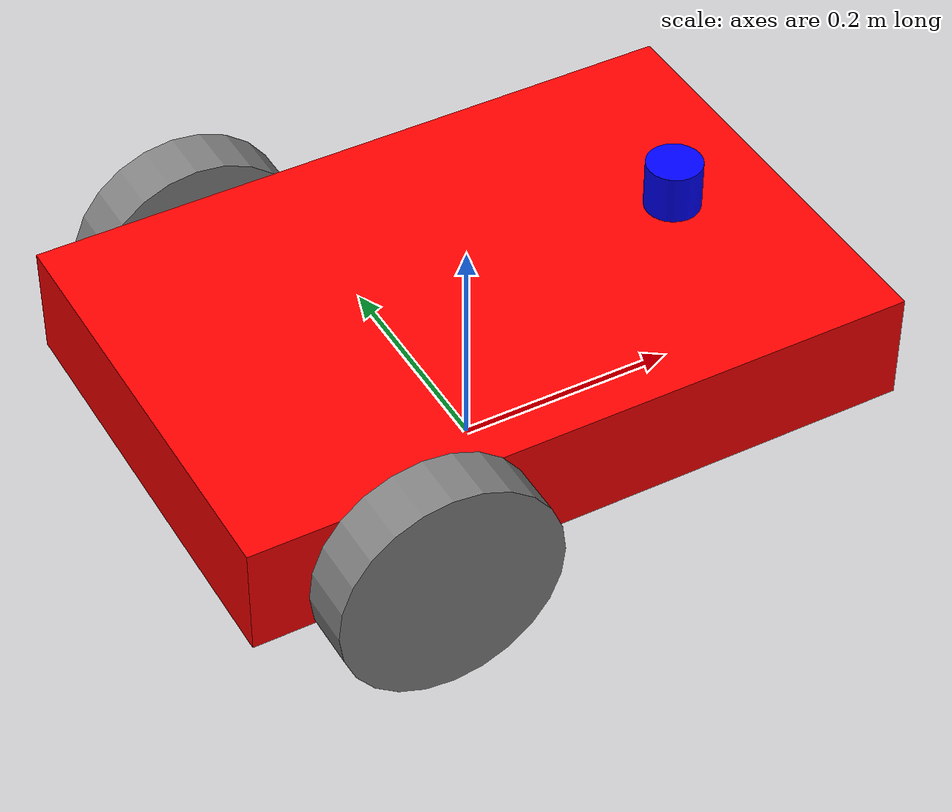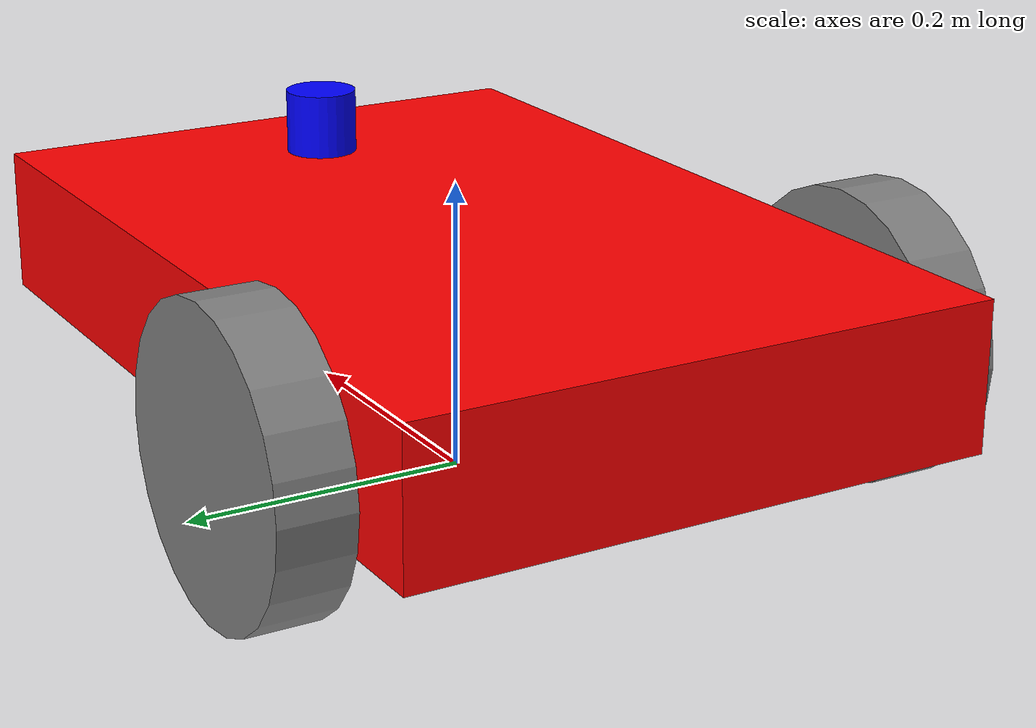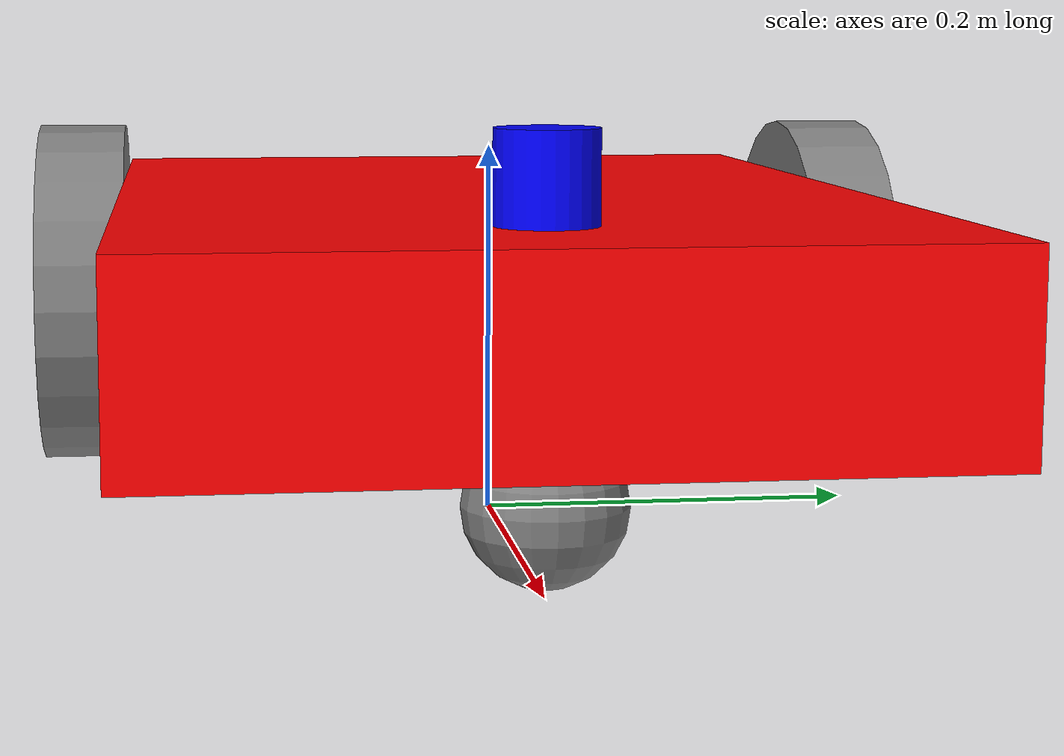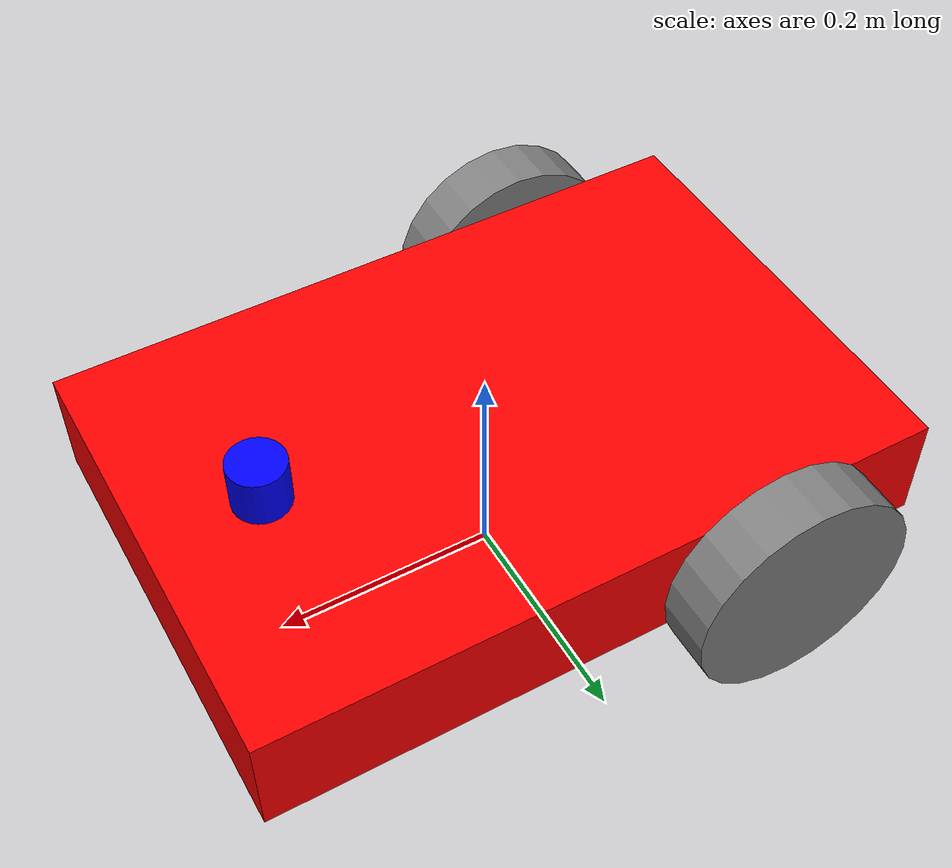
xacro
<?xml version="1.0"?>

<robot xmlns:xacro="http://www.ros.org/wiki/xacro" name="rz_robot">

    <xacro:include filename="$(find robot_model)/urdf/gazebo_config.xacro" />
    <xacro:include filename="$(find robot_model)/urdf/robot_plugins.gazebo" />

    <!-- Material : colors -->
    <material name="red">
        <color rgba="1.0 0.0 0.0 1.0"/>
    </material>

    <material name="gray">
        <color rgba="0.5 0.5 0.5 1.0"/>
    </material>

    <material name="blue">
        <color rgba="0.0 0.0 1.0 1.0"/>
    </material>

    <!-- base link  -->
    <link name="base_footprint" />

    <!-- Chassis link -->
    <link name="chassis_link">

        <inertial>
            <origin xyz="0.0 0.0 0.0" rpy="0.0 0.0 0.0"/>
            <mass value="5.0"/>
            <inertia ixx="0.1" ixy="0.0" ixz="0.0" iyy="0.1" iyz="0.0" izz="0.1"/>
        </inertial>

        <visual name="chassis_visual">
            <origin xyz="0.0 0.0 0.0" rpy="0.0 0.0 0.0"/>
            <geometry>
                <box size="0.6 0.4 0.1"/>
            </geometry>
            <material name="red"/>
        </visual>

        <collision>
            <origin xyz="0.0 0.0 0.0" rpy="0.0 0.0 0.0"/>
            <geometry>
                <box size="0.6 0.4 0.1"/>
            </geometry>
        </collision>

    </link>

    <!-- joint :  base link with chassis link -->
    <joint name="joint_name" type="fixed">
        <origin xyz="0.0 0.0 0.125" rpy="0.0 0.0 0.0"/>
        <parent link="base_footprint"/>
        <child link="chassis_link"/>
    </joint>

    <!-- right wheel link -->
    <link name="right_wheel_link">

        <inertial>
            <origin xyz="0.0 0.0 0.0" rpy="0.0 0.0 0.0"/>
            <mass value="0.5"/>
            <inertia ixx="0.1" ixy="0.0" ixz="0.0" iyy="0.1" iyz="0.0" izz="0.1"/>
        </inertial>

        <visual name="left_wheel_visual">
            <origin xyz="0.0 0.0 0.0" rpy="1.57 0.0 0.0"/>
            <geometry>
                <cylinder radius="0.1" length="0.05"/>
            </geometry>
            <material name="gray"/>
        </visual>

        <collision>
            <origin xyz="0.0 0.0 0.0" rpy="1.57 0.0 0.0"/>
            <geometry>
                <cylinder radius="0.1" length="0.05"/>
            </geometry>
        </collision>

    </link>

    <!-- jont : chassis with left wheel -->
    <joint name="right_wheel_joint" type="continuous">
        <origin xyz="-0.15 -0.225 -0.02" rpy="0.0 0.0 0.0"/>
        <parent link="chassis_link"/>
        <child link="right_wheel_link"/>
        <axis xyz="0.0 1.0 0.0"/>
    </joint>

    <!-- left wheel link -->
    <link name="left_wheel_link">

        <inertial>
            <origin xyz="0.0 0.0 0.0" rpy="0.0 0.0 0.0"/>
            <mass value="0.5"/>
            <inertia ixx="0.1" ixy="0.0" ixz="0.0" iyy="0.1" iyz="0.0" izz="0.1"/>
        </inertial>

        <visual name="left_wheel_visual">
            <origin xyz="0.0 0.0 0.0" rpy="1.57 0.0 0.0"/>
            <geometry>
                <cylinder radius="0.1" length="0.05"/>
            </geometry>
            <material name="gray"/>
        </visual>

        <collision>
            <origin xyz="0.0 0.0 0.0" rpy="1.57 0.0 0.0"/>
            <geometry>
                <cylinder radius="0.1" length="0.05"/>
            </geometry>
        </collision>

    </link>

    <!-- jont : chassis with right wheel -->
    <joint name="left_wheel_joint" type="continuous">
        <origin xyz="-0.15 0.225 -0.02" rpy="0.0 0.0 0.0"/>
        <parent link="chassis_link"/>
        <child link="left_wheel_link"/>
        <axis xyz="0.0 1.0 0.0"/>
    </joint>

    <!-- caster wheel link -->
    <link name="caster_wheel_link">

        <inertial>
            <origin xyz="0.0 0.0 0.0" rpy="0.0 0.0 0.0"/>
            <mass value="0.5"/>
            <inertia ixx="0.1" ixy="0.0" ixz="0.0" iyy="0.1" iyz="0.0" izz="0.1"/>
        </inertial>

        <visual name="caster_wheel_visual">
            <origin xyz="0.0 0.0 0.0" rpy="0.0 0.0 0.0"/>
                <geometry>
                    <sphere radius="0.04"/>
                </geometry>
            <material name="gray"/>
        </visual>

        <collision>
            <origin xyz="0.0 0.0 0.0" rpy="0.0 0.0 0.0"/>
                <geometry>
                <sphere radius="0.04"/>
            </geometry>
        </collision>

    </link>

    <!-- joint : caster wheel whith chassis -->
   <joint name="caster_wheel_joint" type="fixed">
    <origin xyz="0.2 0.0 -0.08" rpy="0.0 0.0 0.0"/>
    <parent link="chassis_link"/>
    <child link="caster_wheel_link"/>
   </joint>

   <!-- lider link -->
   <link name="lidar_link">

    <inertial>
        <origin xyz="0.0 0.0 0.0" rpy="0.0 0.0 0.0"/>
        <mass value="0.0"/>
        <inertia ixx="0.0" ixy="0.0" ixz="0.0" iyy="0.0" iyz="0.0" izz="0.0"/>
    </inertial>

    <visual name="">
        <origin xyz="0.0 0.0 0.0" rpy="0.0 0.0 0.0"/>
        <geometry>
            <cylinder radius="0.025" length="0.05"/>
        </geometry>
        <material name="blue"/>
    </visual>

    <collision>
        <origin xyz="0.0 0.0 0.0" rpy="0.0 0.0 0.0"/>
        <geometry>
            <cylinder radius="0.1" length="0.05"/>
        </geometry>
    </collision>

    </link>

    <!-- joint : lider with chassis -->
    <joint name="lider_joint" type="fixed">
        <origin xyz="0.2 0.0 0.07" rpy="0.0 0.0 0.0"/>
        <parent link="chassis_link"/>
        <child link="lidar_link"/>
    </joint>

</robot>
